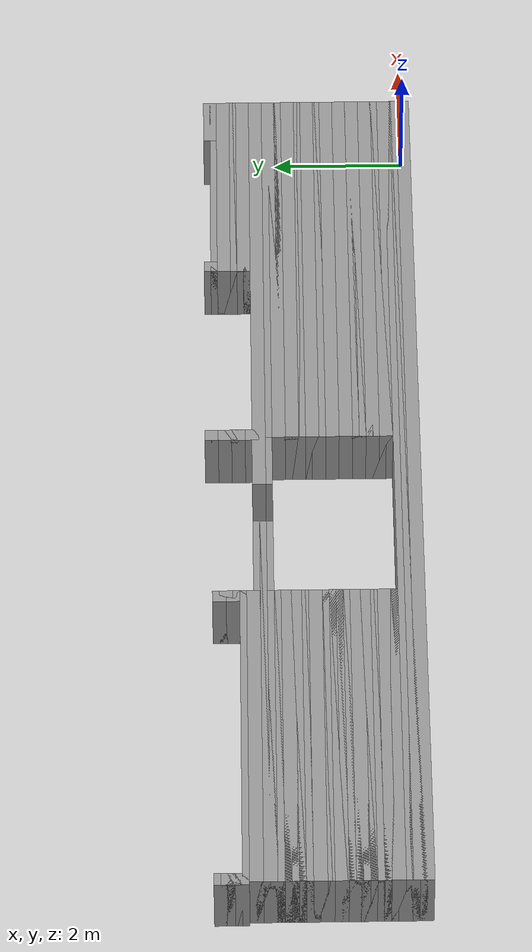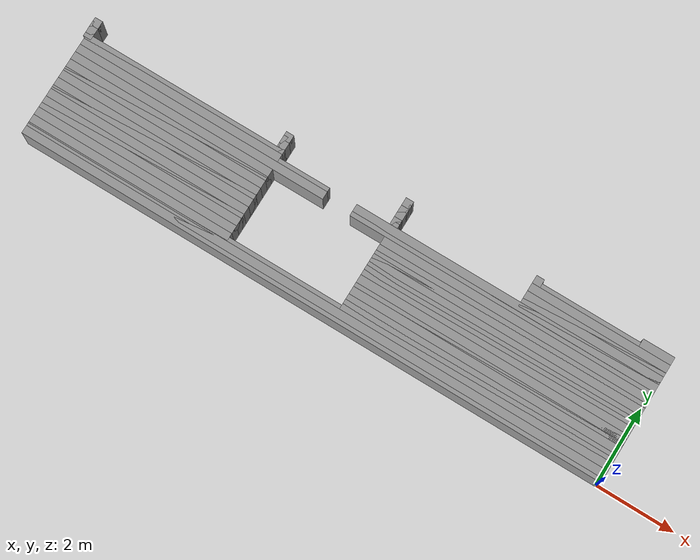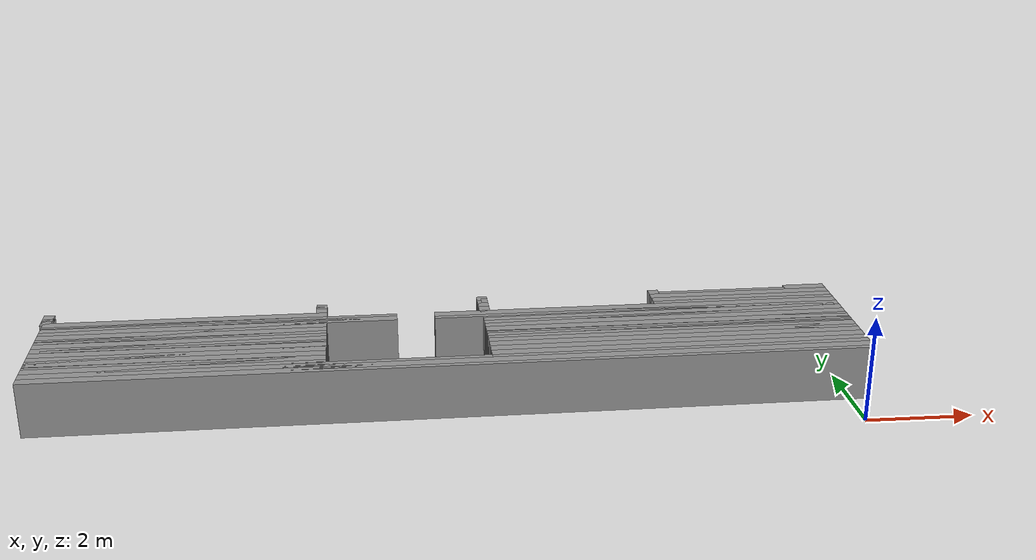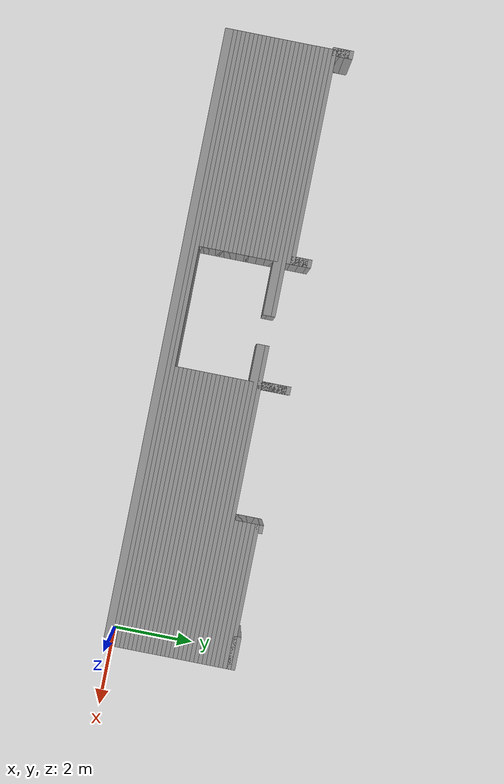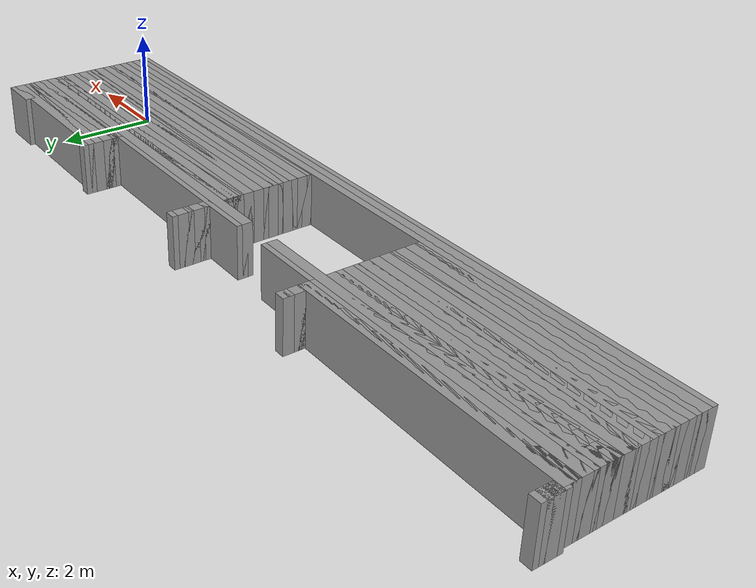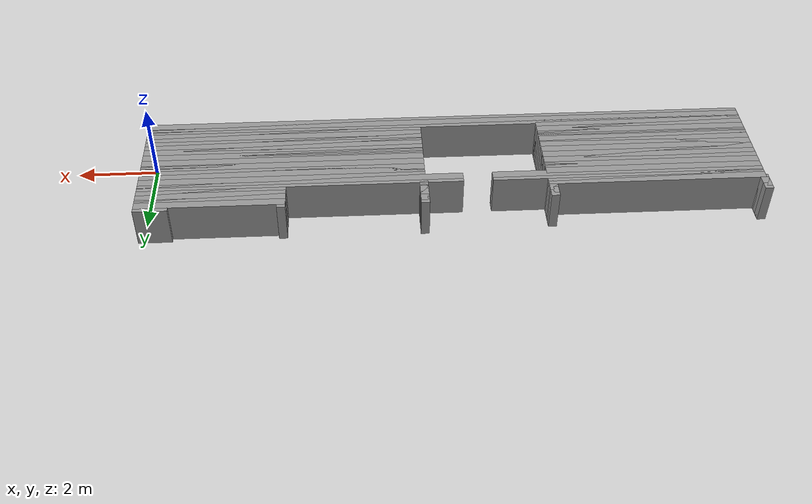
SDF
<sdf version="1.6">
 <world name="GridMap">
  <model name="GridMap">
   <link name="Wall_(74.5,0.0)">
    <collision name="Wall_(74.5,0.0)_Collision">
     <geometry><box><size>14.9 0.2 1.0</size></box></geometry>
     <pose>-7.45 0.0 0.5 0 -0 0</pose>
    </collision>
    <visual name="Wall_(74.5,0.0)_Visual">
     <geometry><box><size>14.9 0.2 1.0</size></box></geometry>
     <pose>-7.45 0.0 0.5 0 -0 0</pose>
     <material>
      <script><uri>file://media/materials/scripts/gazebo.material</uri><name>Gazebo/Grey</name></script>
      <ambient>1 1 1 1</ambient>
     </material>
     <meta><layer>0</layer></meta>
    </visual>
    <pose>0 0 0.5 0 -0 0</pose>
   </link>
   <link name="Wall_(74.5,1.0)">
    <collision name="Wall_(74.5,1.0)_Collision">
     <geometry><box><size>14.9 0.2 1.0</size></box></geometry>
     <pose>-7.45 0.1 0.5 0 -0 0</pose>
    </collision>
    <visual name="Wall_(74.5,1.0)_Visual">
     <geometry><box><size>14.9 0.2 1.0</size></box></geometry>
     <pose>-7.45 0.1 0.5 0 -0 0</pose>
     <material>
      <script><uri>file://media/materials/scripts/gazebo.material</uri><name>Gazebo/Grey</name></script>
      <ambient>1 1 1 1</ambient>
     </material>
     <meta><layer>0</layer></meta>
    </visual>
    <pose>0 0 0.5 0 -0 0</pose>
   </link>
   <link name="Wall_(74.5,2.0)">
    <collision name="Wall_(74.5,2.0)_Collision">
     <geometry><box><size>14.9 0.2 1.0</size></box></geometry>
     <pose>-7.45 0.2 0.5 0 -0 0</pose>
    </collision>
    <visual name="Wall_(74.5,2.0)_Visual">
     <geometry><box><size>14.9 0.2 1.0</size></box></geometry>
     <pose>-7.45 0.2 0.5 0 -0 0</pose>
     <material>
      <script><uri>file://media/materials/scripts/gazebo.material</uri><name>Gazebo/Grey</name></script>
      <ambient>1 1 1 1</ambient>
     </material>
     <meta><layer>0</layer></meta>
    </visual>
    <pose>0 0 0.5 0 -0 0</pose>
   </link>
   <link name="Wall_(34.0,3.0)">
    <collision name="Wall_(34.0,3.0)_Collision">
     <geometry><box><size>6.800000000000001 0.2 1.0</size></box></geometry>
     <pose>-3.4000000000000004 0.30000000000000004 0.5 0 -0 0</pose>
    </collision>
    <visual name="Wall_(34.0,3.0)_Visual">
     <geometry><box><size>6.800000000000001 0.2 1.0</size></box></geometry>
     <pose>-3.4000000000000004 0.30000000000000004 0.5 0 -0 0</pose>
     <material>
      <script><uri>file://media/materials/scripts/gazebo.material</uri><name>Gazebo/Grey</name></script>
      <ambient>1 1 1 1</ambient>
     </material>
     <meta><layer>0</layer></meta>
    </visual>
    <pose>0 0 0.5 0 -0 0</pose>
   </link>
   <link name="Wall_(123.0,3.0)">
    <collision name="Wall_(123.0,3.0)_Collision">
     <geometry><box><size>5.2 0.2 1.0</size></box></geometry>
     <pose>-12.3 0.30000000000000004 0.5 0 -0 0</pose>
    </collision>
    <visual name="Wall_(123.0,3.0)_Visual">
     <geometry><box><size>5.2 0.2 1.0</size></box></geometry>
     <pose>-12.3 0.30000000000000004 0.5 0 -0 0</pose>
     <material>
      <script><uri>file://media/materials/scripts/gazebo.material</uri><name>Gazebo/Grey</name></script>
      <ambient>1 1 1 1</ambient>
     </material>
     <meta><layer>0</layer></meta>
    </visual>
    <pose>0 0 0.5 0 -0 0</pose>
   </link>
   <link name="Wall_(34.0,4.0)">
    <collision name="Wall_(34.0,4.0)_Collision">
     <geometry><box><size>6.800000000000001 0.2 1.0</size></box></geometry>
     <pose>-3.4000000000000004 0.4 0.5 0 -0 0</pose>
    </collision>
    <visual name="Wall_(34.0,4.0)_Visual">
     <geometry><box><size>6.800000000000001 0.2 1.0</size></box></geometry>
     <pose>-3.4000000000000004 0.4 0.5 0 -0 0</pose>
     <material>
      <script><uri>file://media/materials/scripts/gazebo.material</uri><name>Gazebo/Grey</name></script>
      <ambient>1 1 1 1</ambient>
     </material>
     <meta><layer>0</layer></meta>
    </visual>
    <pose>0 0 0.5 0 -0 0</pose>
   </link>
   <link name="Wall_(123.0,4.0)">
    <collision name="Wall_(123.0,4.0)_Collision">
     <geometry><box><size>5.2 0.2 1.0</size></box></geometry>
     <pose>-12.3 0.4 0.5 0 -0 0</pose>
    </collision>
    <visual name="Wall_(123.0,4.0)_Visual">
     <geometry><box><size>5.2 0.2 1.0</size></box></geometry>
     <pose>-12.3 0.4 0.5 0 -0 0</pose>
     <material>
      <script><uri>file://media/materials/scripts/gazebo.material</uri><name>Gazebo/Grey</name></script>
      <ambient>1 1 1 1</ambient>
     </material>
     <meta><layer>0</layer></meta>
    </visual>
    <pose>0 0 0.5 0 -0 0</pose>
   </link>
   <link name="Wall_(34.0,5.0)">
    <collision name="Wall_(34.0,5.0)_Collision">
     <geometry><box><size>6.800000000000001 0.2 1.0</size></box></geometry>
     <pose>-3.4000000000000004 0.5 0.5 0 -0 0</pose>
    </collision>
    <visual name="Wall_(34.0,5.0)_Visual">
     <geometry><box><size>6.800000000000001 0.2 1.0</size></box></geometry>
     <pose>-3.4000000000000004 0.5 0.5 0 -0 0</pose>
     <material>
      <script><uri>file://media/materials/scripts/gazebo.material</uri><name>Gazebo/Grey</name></script>
      <ambient>1 1 1 1</ambient>
     </material>
     <meta><layer>0</layer></meta>
    </visual>
    <pose>0 0 0.5 0 -0 0</pose>
   </link>
   <link name="Wall_(123.0,5.0)">
    <collision name="Wall_(123.0,5.0)_Collision">
     <geometry><box><size>5.2 0.2 1.0</size></box></geometry>
     <pose>-12.3 0.5 0.5 0 -0 0</pose>
    </collision>
    <visual name="Wall_(123.0,5.0)_Visual">
     <geometry><box><size>5.2 0.2 1.0</size></box></geometry>
     <pose>-12.3 0.5 0.5 0 -0 0</pose>
     <material>
      <script><uri>file://media/materials/scripts/gazebo.material</uri><name>Gazebo/Grey</name></script>
      <ambient>1 1 1 1</ambient>
     </material>
     <meta><layer>0</layer></meta>
    </visual>
    <pose>0 0 0.5 0 -0 0</pose>
   </link>
   <link name="Wall_(34.0,6.0)">
    <collision name="Wall_(34.0,6.0)_Collision">
     <geometry><box><size>6.800000000000001 0.2 1.0</size></box></geometry>
     <pose>-3.4000000000000004 0.6000000000000001 0.5 0 -0 0</pose>
    </collision>
    <visual name="Wall_(34.0,6.0)_Visual">
     <geometry><box><size>6.800000000000001 0.2 1.0</size></box></geometry>
     <pose>-3.4000000000000004 0.6000000000000001 0.5 0 -0 0</pose>
     <material>
      <script><uri>file://media/materials/scripts/gazebo.material</uri><name>Gazebo/Grey</name></script>
      <ambient>1 1 1 1</ambient>
     </material>
     <meta><layer>0</layer></meta>
    </visual>
    <pose>0 0 0.5 0 -0 0</pose>
   </link>
   <link name="Wall_(123.0,6.0)">
    <collision name="Wall_(123.0,6.0)_Collision">
     <geometry><box><size>5.2 0.2 1.0</size></box></geometry>
     <pose>-12.3 0.6000000000000001 0.5 0 -0 0</pose>
    </collision>
    <visual name="Wall_(123.0,6.0)_Visual">
     <geometry><box><size>5.2 0.2 1.0</size></box></geometry>
     <pose>-12.3 0.6000000000000001 0.5 0 -0 0</pose>
     <material>
      <script><uri>file://media/materials/scripts/gazebo.material</uri><name>Gazebo/Grey</name></script>
      <ambient>1 1 1 1</ambient>
     </material>
     <meta><layer>0</layer></meta>
    </visual>
    <pose>0 0 0.5 0 -0 0</pose>
   </link>
   <link name="Wall_(34.0,7.0)">
    <collision name="Wall_(34.0,7.0)_Collision">
     <geometry><box><size>6.800000000000001 0.2 1.0</size></box></geometry>
     <pose>-3.4000000000000004 0.7000000000000001 0.5 0 -0 0</pose>
    </collision>
    <visual name="Wall_(34.0,7.0)_Visual">
     <geometry><box><size>6.800000000000001 0.2 1.0</size></box></geometry>
     <pose>-3.4000000000000004 0.7000000000000001 0.5 0 -0 0</pose>
     <material>
      <script><uri>file://media/materials/scripts/gazebo.material</uri><name>Gazebo/Grey</name></script>
      <ambient>1 1 1 1</ambient>
     </material>
     <meta><layer>0</layer></meta>
    </visual>
    <pose>0 0 0.5 0 -0 0</pose>
   </link>
   <link name="Wall_(123.0,7.0)">
    <collision name="Wall_(123.0,7.0)_Collision">
     <geometry><box><size>5.2 0.2 1.0</size></box></geometry>
     <pose>-12.3 0.7000000000000001 0.5 0 -0 0</pose>
    </collision>
    <visual name="Wall_(123.0,7.0)_Visual">
     <geometry><box><size>5.2 0.2 1.0</size></box></geometry>
     <pose>-12.3 0.7000000000000001 0.5 0 -0 0</pose>
     <material>
      <script><uri>file://media/materials/scripts/gazebo.material</uri><name>Gazebo/Grey</name></script>
      <ambient>1 1 1 1</ambient>
     </material>
     <meta><layer>0</layer></meta>
    </visual>
    <pose>0 0 0.5 0 -0 0</pose>
   </link>
   <link name="Wall_(34.0,8.0)">
    <collision name="Wall_(34.0,8.0)_Collision">
     <geometry><box><size>6.800000000000001 0.2 1.0</size></box></geometry>
     <pose>-3.4000000000000004 0.8 0.5 0 -0 0</pose>
    </collision>
    <visual name="Wall_(34.0,8.0)_Visual">
     <geometry><box><size>6.800000000000001 0.2 1.0</size></box></geometry>
     <pose>-3.4000000000000004 0.8 0.5 0 -0 0</pose>
     <material>
      <script><uri>file://media/materials/scripts/gazebo.material</uri><name>Gazebo/Grey</name></script>
      <ambient>1 1 1 1</ambient>
     </material>
     <meta><layer>0</layer></meta>
    </visual>
    <pose>0 0 0.5 0 -0 0</pose>
   </link>
   <link name="Wall_(123.0,8.0)">
    <collision name="Wall_(123.0,8.0)_Collision">
     <geometry><box><size>5.2 0.2 1.0</size></box></geometry>
     <pose>-12.3 0.8 0.5 0 -0 0</pose>
    </collision>
    <visual name="Wall_(123.0,8.0)_Visual">
     <geometry><box><size>5.2 0.2 1.0</size></box></geometry>
     <pose>-12.3 0.8 0.5 0 -0 0</pose>
     <material>
      <script><uri>file://media/materials/scripts/gazebo.material</uri><name>Gazebo/Grey</name></script>
      <ambient>1 1 1 1</ambient>
     </material>
     <meta><layer>0</layer></meta>
    </visual>
    <pose>0 0 0.5 0 -0 0</pose>
   </link>
   <link name="Wall_(34.0,9.0)">
    <collision name="Wall_(34.0,9.0)_Collision">
     <geometry><box><size>6.800000000000001 0.2 1.0</size></box></geometry>
     <pose>-3.4000000000000004 0.9 0.5 0 -0 0</pose>
    </collision>
    <visual name="Wall_(34.0,9.0)_Visual">
     <geometry><box><size>6.800000000000001 0.2 1.0</size></box></geometry>
     <pose>-3.4000000000000004 0.9 0.5 0 -0 0</pose>
     <material>
      <script><uri>file://media/materials/scripts/gazebo.material</uri><name>Gazebo/Grey</name></script>
      <ambient>1 1 1 1</ambient>
     </material>
     <meta><layer>0</layer></meta>
    </visual>
    <pose>0 0 0.5 0 -0 0</pose>
   </link>
   <link name="Wall_(123.0,9.0)">
    <collision name="Wall_(123.0,9.0)_Collision">
     <geometry><box><size>5.2 0.2 1.0</size></box></geometry>
     <pose>-12.3 0.9 0.5 0 -0 0</pose>
    </collision>
    <visual name="Wall_(123.0,9.0)_Visual">
     <geometry><box><size>5.2 0.2 1.0</size></box></geometry>
     <pose>-12.3 0.9 0.5 0 -0 0</pose>
     <material>
      <script><uri>file://media/materials/scripts/gazebo.material</uri><name>Gazebo/Grey</name></script>
      <ambient>1 1 1 1</ambient>
     </material>
     <meta><layer>0</layer></meta>
    </visual>
    <pose>0 0 0.5 0 -0 0</pose>
   </link>
   <link name="Wall_(34.0,10.0)">
    <collision name="Wall_(34.0,10.0)_Collision">
     <geometry><box><size>6.800000000000001 0.2 1.0</size></box></geometry>
     <pose>-3.4000000000000004 1.0 0.5 0 -0 0</pose>
    </collision>
    <visual name="Wall_(34.0,10.0)_Visual">
     <geometry><box><size>6.800000000000001 0.2 1.0</size></box></geometry>
     <pose>-3.4000000000000004 1.0 0.5 0 -0 0</pose>
     <material>
      <script><uri>file://media/materials/scripts/gazebo.material</uri><name>Gazebo/Grey</name></script>
      <ambient>1 1 1 1</ambient>
     </material>
     <meta><layer>0</layer></meta>
    </visual>
    <pose>0 0 0.5 0 -0 0</pose>
   </link>
   <link name="Wall_(123.0,10.0)">
    <collision name="Wall_(123.0,10.0)_Collision">
     <geometry><box><size>5.2 0.2 1.0</size></box></geometry>
     <pose>-12.3 1.0 0.5 0 -0 0</pose>
    </collision>
    <visual name="Wall_(123.0,10.0)_Visual">
     <geometry><box><size>5.2 0.2 1.0</size></box></geometry>
     <pose>-12.3 1.0 0.5 0 -0 0</pose>
     <material>
      <script><uri>file://media/materials/scripts/gazebo.material</uri><name>Gazebo/Grey</name></script>
      <ambient>1 1 1 1</ambient>
     </material>
     <meta><layer>0</layer></meta>
    </visual>
    <pose>0 0 0.5 0 -0 0</pose>
   </link>
   <link name="Wall_(34.0,11.0)">
    <collision name="Wall_(34.0,11.0)_Collision">
     <geometry><box><size>6.800000000000001 0.2 1.0</size></box></geometry>
     <pose>-3.4000000000000004 1.1 0.5 0 -0 0</pose>
    </collision>
    <visual name="Wall_(34.0,11.0)_Visual">
     <geometry><box><size>6.800000000000001 0.2 1.0</size></box></geometry>
     <pose>-3.4000000000000004 1.1 0.5 0 -0 0</pose>
     <material>
      <script><uri>file://media/materials/scripts/gazebo.material</uri><name>Gazebo/Grey</name></script>
      <ambient>1 1 1 1</ambient>
     </material>
     <meta><layer>0</layer></meta>
    </visual>
    <pose>0 0 0.5 0 -0 0</pose>
   </link>
   <link name="Wall_(123.0,11.0)">
    <collision name="Wall_(123.0,11.0)_Collision">
     <geometry><box><size>5.2 0.2 1.0</size></box></geometry>
     <pose>-12.3 1.1 0.5 0 -0 0</pose>
    </collision>
    <visual name="Wall_(123.0,11.0)_Visual">
     <geometry><box><size>5.2 0.2 1.0</size></box></geometry>
     <pose>-12.3 1.1 0.5 0 -0 0</pose>
     <material>
      <script><uri>file://media/materials/scripts/gazebo.material</uri><name>Gazebo/Grey</name></script>
      <ambient>1 1 1 1</ambient>
     </material>
     <meta><layer>0</layer></meta>
    </visual>
    <pose>0 0 0.5 0 -0 0</pose>
   </link>
   <link name="Wall_(34.0,12.0)">
    <collision name="Wall_(34.0,12.0)_Collision">
     <geometry><box><size>6.800000000000001 0.2 1.0</size></box></geometry>
     <pose>-3.4000000000000004 1.2000000000000002 0.5 0 -0 0</pose>
    </collision>
    <visual name="Wall_(34.0,12.0)_Visual">
     <geometry><box><size>6.800000000000001 0.2 1.0</size></box></geometry>
     <pose>-3.4000000000000004 1.2000000000000002 0.5 0 -0 0</pose>
     <material>
      <script><uri>file://media/materials/scripts/gazebo.material</uri><name>Gazebo/Grey</name></script>
      <ambient>1 1 1 1</ambient>
     </material>
     <meta><layer>0</layer></meta>
    </visual>
    <pose>0 0 0.5 0 -0 0</pose>
   </link>
   <link name="Wall_(123.0,12.0)">
    <collision name="Wall_(123.0,12.0)_Collision">
     <geometry><box><size>5.2 0.2 1.0</size></box></geometry>
     <pose>-12.3 1.2000000000000002 0.5 0 -0 0</pose>
    </collision>
    <visual name="Wall_(123.0,12.0)_Visual">
     <geometry><box><size>5.2 0.2 1.0</size></box></geometry>
     <pose>-12.3 1.2000000000000002 0.5 0 -0 0</pose>
     <material>
      <script><uri>file://media/materials/scripts/gazebo.material</uri><name>Gazebo/Grey</name></script>
      <ambient>1 1 1 1</ambient>
     </material>
     <meta><layer>0</layer></meta>
    </visual>
    <pose>0 0 0.5 0 -0 0</pose>
   </link>
   <link name="Wall_(34.0,13.0)">
    <collision name="Wall_(34.0,13.0)_Collision">
     <geometry><box><size>6.800000000000001 0.2 1.0</size></box></geometry>
     <pose>-3.4000000000000004 1.3 0.5 0 -0 0</pose>
    </collision>
    <visual name="Wall_(34.0,13.0)_Visual">
     <geometry><box><size>6.800000000000001 0.2 1.0</size></box></geometry>
     <pose>-3.4000000000000004 1.3 0.5 0 -0 0</pose>
     <material>
      <script><uri>file://media/materials/scripts/gazebo.material</uri><name>Gazebo/Grey</name></script>
      <ambient>1 1 1 1</ambient>
     </material>
     <meta><layer>0</layer></meta>
    </visual>
    <pose>0 0 0.5 0 -0 0</pose>
   </link>
   <link name="Wall_(123.0,13.0)">
    <collision name="Wall_(123.0,13.0)_Collision">
     <geometry><box><size>5.2 0.2 1.0</size></box></geometry>
     <pose>-12.3 1.3 0.5 0 -0 0</pose>
    </collision>
    <visual name="Wall_(123.0,13.0)_Visual">
     <geometry><box><size>5.2 0.2 1.0</size></box></geometry>
     <pose>-12.3 1.3 0.5 0 -0 0</pose>
     <material>
      <script><uri>file://media/materials/scripts/gazebo.material</uri><name>Gazebo/Grey</name></script>
      <ambient>1 1 1 1</ambient>
     </material>
     <meta><layer>0</layer></meta>
    </visual>
    <pose>0 0 0.5 0 -0 0</pose>
   </link>
   <link name="Wall_(34.0,14.0)">
    <collision name="Wall_(34.0,14.0)_Collision">
     <geometry><box><size>6.800000000000001 0.2 1.0</size></box></geometry>
     <pose>-3.4000000000000004 1.4000000000000001 0.5 0 -0 0</pose>
    </collision>
    <visual name="Wall_(34.0,14.0)_Visual">
     <geometry><box><size>6.800000000000001 0.2 1.0</size></box></geometry>
     <pose>-3.4000000000000004 1.4000000000000001 0.5 0 -0 0</pose>
     <material>
      <script><uri>file://media/materials/scripts/gazebo.material</uri><name>Gazebo/Grey</name></script>
      <ambient>1 1 1 1</ambient>
     </material>
     <meta><layer>0</layer></meta>
    </visual>
    <pose>0 0 0.5 0 -0 0</pose>
   </link>
   <link name="Wall_(123.0,14.0)">
    <collision name="Wall_(123.0,14.0)_Collision">
     <geometry><box><size>5.2 0.2 1.0</size></box></geometry>
     <pose>-12.3 1.4000000000000001 0.5 0 -0 0</pose>
    </collision>
    <visual name="Wall_(123.0,14.0)_Visual">
     <geometry><box><size>5.2 0.2 1.0</size></box></geometry>
     <pose>-12.3 1.4000000000000001 0.5 0 -0 0</pose>
     <material>
      <script><uri>file://media/materials/scripts/gazebo.material</uri><name>Gazebo/Grey</name></script>
      <ambient>1 1 1 1</ambient>
     </material>
     <meta><layer>0</layer></meta>
    </visual>
    <pose>0 0 0.5 0 -0 0</pose>
   </link>
   <link name="Wall_(34.0,15.0)">
    <collision name="Wall_(34.0,15.0)_Collision">
     <geometry><box><size>6.800000000000001 0.2 1.0</size></box></geometry>
     <pose>-3.4000000000000004 1.5 0.5 0 -0 0</pose>
    </collision>
    <visual name="Wall_(34.0,15.0)_Visual">
     <geometry><box><size>6.800000000000001 0.2 1.0</size></box></geometry>
     <pose>-3.4000000000000004 1.5 0.5 0 -0 0</pose>
     <material>
      <script><uri>file://media/materials/scripts/gazebo.material</uri><name>Gazebo/Grey</name></script>
      <ambient>1 1 1 1</ambient>
     </material>
     <meta><layer>0</layer></meta>
    </visual>
    <pose>0 0 0.5 0 -0 0</pose>
   </link>
   <link name="Wall_(123.0,15.0)">
    <collision name="Wall_(123.0,15.0)_Collision">
     <geometry><box><size>5.2 0.2 1.0</size></box></geometry>
     <pose>-12.3 1.5 0.5 0 -0 0</pose>
    </collision>
    <visual name="Wall_(123.0,15.0)_Visual">
     <geometry><box><size>5.2 0.2 1.0</size></box></geometry>
     <pose>-12.3 1.5 0.5 0 -0 0</pose>
     <material>
      <script><uri>file://media/materials/scripts/gazebo.material</uri><name>Gazebo/Grey</name></script>
      <ambient>1 1 1 1</ambient>
     </material>
     <meta><layer>0</layer></meta>
    </visual>
    <pose>0 0 0.5 0 -0 0</pose>
   </link>
   <link name="Wall_(34.0,16.0)">
    <collision name="Wall_(34.0,16.0)_Collision">
     <geometry><box><size>6.800000000000001 0.2 1.0</size></box></geometry>
     <pose>-3.4000000000000004 1.6 0.5 0 -0 0</pose>
    </collision>
    <visual name="Wall_(34.0,16.0)_Visual">
     <geometry><box><size>6.800000000000001 0.2 1.0</size></box></geometry>
     <pose>-3.4000000000000004 1.6 0.5 0 -0 0</pose>
     <material>
      <script><uri>file://media/materials/scripts/gazebo.material</uri><name>Gazebo/Grey</name></script>
      <ambient>1 1 1 1</ambient>
     </material>
     <meta><layer>0</layer></meta>
    </visual>
    <pose>0 0 0.5 0 -0 0</pose>
   </link>
   <link name="Wall_(123.0,16.0)">
    <collision name="Wall_(123.0,16.0)_Collision">
     <geometry><box><size>5.2 0.2 1.0</size></box></geometry>
     <pose>-12.3 1.6 0.5 0 -0 0</pose>
    </collision>
    <visual name="Wall_(123.0,16.0)_Visual">
     <geometry><box><size>5.2 0.2 1.0</size></box></geometry>
     <pose>-12.3 1.6 0.5 0 -0 0</pose>
     <material>
      <script><uri>file://media/materials/scripts/gazebo.material</uri><name>Gazebo/Grey</name></script>
      <ambient>1 1 1 1</ambient>
     </material>
     <meta><layer>0</layer></meta>
    </visual>
    <pose>0 0 0.5 0 -0 0</pose>
   </link>
   <link name="Wall_(34.0,17.0)">
    <collision name="Wall_(34.0,17.0)_Collision">
     <geometry><box><size>6.800000000000001 0.2 1.0</size></box></geometry>
     <pose>-3.4000000000000004 1.7000000000000002 0.5 0 -0 0</pose>
    </collision>
    <visual name="Wall_(34.0,17.0)_Visual">
     <geometry><box><size>6.800000000000001 0.2 1.0</size></box></geometry>
     <pose>-3.4000000000000004 1.7000000000000002 0.5 0 -0 0</pose>
     <material>
      <script><uri>file://media/materials/scripts/gazebo.material</uri><name>Gazebo/Grey</name></script>
      <ambient>1 1 1 1</ambient>
     </material>
     <meta><layer>0</layer></meta>
    </visual>
    <pose>0 0 0.5 0 -0 0</pose>
   </link>
   <link name="Wall_(123.0,17.0)">
    <collision name="Wall_(123.0,17.0)_Collision">
     <geometry><box><size>5.2 0.2 1.0</size></box></geometry>
     <pose>-12.3 1.7000000000000002 0.5 0 -0 0</pose>
    </collision>
    <visual name="Wall_(123.0,17.0)_Visual">
     <geometry><box><size>5.2 0.2 1.0</size></box></geometry>
     <pose>-12.3 1.7000000000000002 0.5 0 -0 0</pose>
     <material>
      <script><uri>file://media/materials/scripts/gazebo.material</uri><name>Gazebo/Grey</name></script>
      <ambient>1 1 1 1</ambient>
     </material>
     <meta><layer>0</layer></meta>
    </visual>
    <pose>0 0 0.5 0 -0 0</pose>
   </link>
   <link name="Wall_(34.0,18.0)">
    <collision name="Wall_(34.0,18.0)_Collision">
     <geometry><box><size>6.800000000000001 0.2 1.0</size></box></geometry>
     <pose>-3.4000000000000004 1.8 0.5 0 -0 0</pose>
    </collision>
    <visual name="Wall_(34.0,18.0)_Visual">
     <geometry><box><size>6.800000000000001 0.2 1.0</size></box></geometry>
     <pose>-3.4000000000000004 1.8 0.5 0 -0 0</pose>
     <material>
      <script><uri>file://media/materials/scripts/gazebo.material</uri><name>Gazebo/Grey</name></script>
      <ambient>1 1 1 1</ambient>
     </material>
     <meta><layer>0</layer></meta>
    </visual>
    <pose>0 0 0.5 0 -0 0</pose>
   </link>
   <link name="Wall_(123.0,18.0)">
    <collision name="Wall_(123.0,18.0)_Collision">
     <geometry><box><size>5.2 0.2 1.0</size></box></geometry>
     <pose>-12.3 1.8 0.5 0 -0 0</pose>
    </collision>
    <visual name="Wall_(123.0,18.0)_Visual">
     <geometry><box><size>5.2 0.2 1.0</size></box></geometry>
     <pose>-12.3 1.8 0.5 0 -0 0</pose>
     <material>
      <script><uri>file://media/materials/scripts/gazebo.material</uri><name>Gazebo/Grey</name></script>
      <ambient>1 1 1 1</ambient>
     </material>
     <meta><layer>0</layer></meta>
    </visual>
    <pose>0 0 0.5 0 -0 0</pose>
   </link>
   <link name="Wall_(34.0,19.0)">
    <collision name="Wall_(34.0,19.0)_Collision">
     <geometry><box><size>6.800000000000001 0.2 1.0</size></box></geometry>
     <pose>-3.4000000000000004 1.9000000000000001 0.5 0 -0 0</pose>
    </collision>
    <visual name="Wall_(34.0,19.0)_Visual">
     <geometry><box><size>6.800000000000001 0.2 1.0</size></box></geometry>
     <pose>-3.4000000000000004 1.9000000000000001 0.5 0 -0 0</pose>
     <material>
      <script><uri>file://media/materials/scripts/gazebo.material</uri><name>Gazebo/Grey</name></script>
      <ambient>1 1 1 1</ambient>
     </material>
     <meta><layer>0</layer></meta>
    </visual>
    <pose>0 0 0.5 0 -0 0</pose>
   </link>
   <link name="Wall_(123.0,19.0)">
    <collision name="Wall_(123.0,19.0)_Collision">
     <geometry><box><size>5.2 0.2 1.0</size></box></geometry>
     <pose>-12.3 1.9000000000000001 0.5 0 -0 0</pose>
    </collision>
    <visual name="Wall_(123.0,19.0)_Visual">
     <geometry><box><size>5.2 0.2 1.0</size></box></geometry>
     <pose>-12.3 1.9000000000000001 0.5 0 -0 0</pose>
     <material>
      <script><uri>file://media/materials/scripts/gazebo.material</uri><name>Gazebo/Grey</name></script>
      <ambient>1 1 1 1</ambient>
     </material>
     <meta><layer>0</layer></meta>
    </visual>
    <pose>0 0 0.5 0 -0 0</pose>
   </link>
   <link name="Wall_(34.0,20.0)">
    <collision name="Wall_(34.0,20.0)_Collision">
     <geometry><box><size>6.800000000000001 0.2 1.0</size></box></geometry>
     <pose>-3.4000000000000004 2.0 0.5 0 -0 0</pose>
    </collision>
    <visual name="Wall_(34.0,20.0)_Visual">
     <geometry><box><size>6.800000000000001 0.2 1.0</size></box></geometry>
     <pose>-3.4000000000000004 2.0 0.5 0 -0 0</pose>
     <material>
      <script><uri>file://media/materials/scripts/gazebo.material</uri><name>Gazebo/Grey</name></script>
      <ambient>1 1 1 1</ambient>
     </material>
     <meta><layer>0</layer></meta>
    </visual>
    <pose>0 0 0.5 0 -0 0</pose>
   </link>
   <link name="Wall_(123.0,20.0)">
    <collision name="Wall_(123.0,20.0)_Collision">
     <geometry><box><size>5.2 0.2 1.0</size></box></geometry>
     <pose>-12.3 2.0 0.5 0 -0 0</pose>
    </collision>
    <visual name="Wall_(123.0,20.0)_Visual">
     <geometry><box><size>5.2 0.2 1.0</size></box></geometry>
     <pose>-12.3 2.0 0.5 0 -0 0</pose>
     <material>
      <script><uri>file://media/materials/scripts/gazebo.material</uri><name>Gazebo/Grey</name></script>
      <ambient>1 1 1 1</ambient>
     </material>
     <meta><layer>0</layer></meta>
    </visual>
    <pose>0 0 0.5 0 -0 0</pose>
   </link>
   <link name="Wall_(34.0,21.0)">
    <collision name="Wall_(34.0,21.0)_Collision">
     <geometry><box><size>6.800000000000001 0.2 1.0</size></box></geometry>
     <pose>-3.4000000000000004 2.1 0.5 0 -0 0</pose>
    </collision>
    <visual name="Wall_(34.0,21.0)_Visual">
     <geometry><box><size>6.800000000000001 0.2 1.0</size></box></geometry>
     <pose>-3.4000000000000004 2.1 0.5 0 -0 0</pose>
     <material>
      <script><uri>file://media/materials/scripts/gazebo.material</uri><name>Gazebo/Grey</name></script>
      <ambient>1 1 1 1</ambient>
     </material>
     <meta><layer>0</layer></meta>
    </visual>
    <pose>0 0 0.5 0 -0 0</pose>
   </link>
   <link name="Wall_(123.0,21.0)">
    <collision name="Wall_(123.0,21.0)_Collision">
     <geometry><box><size>5.2 0.2 1.0</size></box></geometry>
     <pose>-12.3 2.1 0.5 0 -0 0</pose>
    </collision>
    <visual name="Wall_(123.0,21.0)_Visual">
     <geometry><box><size>5.2 0.2 1.0</size></box></geometry>
     <pose>-12.3 2.1 0.5 0 -0 0</pose>
     <material>
      <script><uri>file://media/materials/scripts/gazebo.material</uri><name>Gazebo/Grey</name></script>
      <ambient>1 1 1 1</ambient>
     </material>
     <meta><layer>0</layer></meta>
    </visual>
    <pose>0 0 0.5 0 -0 0</pose>
   </link>
   <link name="Wall_(38.5,22.0)">
    <collision name="Wall_(38.5,22.0)_Collision">
     <geometry><box><size>7.7 0.2 1.0</size></box></geometry>
     <pose>-3.85 2.2 0.5 0 -0 0</pose>
    </collision>
    <visual name="Wall_(38.5,22.0)_Visual">
     <geometry><box><size>7.7 0.2 1.0</size></box></geometry>
     <pose>-3.85 2.2 0.5 0 -0 0</pose>
     <material>
      <script><uri>file://media/materials/scripts/gazebo.material</uri><name>Gazebo/Grey</name></script>
      <ambient>1 1 1 1</ambient>
     </material>
     <meta><layer>0</layer></meta>
    </visual>
    <pose>0 0 0.5 0 -0 0</pose>
   </link>
   <link name="Wall_(116.5,22.0)">
    <collision name="Wall_(116.5,22.0)_Collision">
     <geometry><box><size>6.5 0.2 1.0</size></box></geometry>
     <pose>-11.65 2.2 0.5 0 -0 0</pose>
    </collision>
    <visual name="Wall_(116.5,22.0)_Visual">
     <geometry><box><size>6.5 0.2 1.0</size></box></geometry>
     <pose>-11.65 2.2 0.5 0 -0 0</pose>
     <material>
      <script><uri>file://media/materials/scripts/gazebo.material</uri><name>Gazebo/Grey</name></script>
      <ambient>1 1 1 1</ambient>
     </material>
     <meta><layer>0</layer></meta>
    </visual>
    <pose>0 0 0.5 0 -0 0</pose>
   </link>
   <link name="Wall_(38.5,23.0)">
    <collision name="Wall_(38.5,23.0)_Collision">
     <geometry><box><size>7.7 0.2 1.0</size></box></geometry>
     <pose>-3.85 2.3000000000000003 0.5 0 -0 0</pose>
    </collision>
    <visual name="Wall_(38.5,23.0)_Visual">
     <geometry><box><size>7.7 0.2 1.0</size></box></geometry>
     <pose>-3.85 2.3000000000000003 0.5 0 -0 0</pose>
     <material>
      <script><uri>file://media/materials/scripts/gazebo.material</uri><name>Gazebo/Grey</name></script>
      <ambient>1 1 1 1</ambient>
     </material>
     <meta><layer>0</layer></meta>
    </visual>
    <pose>0 0 0.5 0 -0 0</pose>
   </link>
   <link name="Wall_(116.5,23.0)">
    <collision name="Wall_(116.5,23.0)_Collision">
     <geometry><box><size>6.5 0.2 1.0</size></box></geometry>
     <pose>-11.65 2.3000000000000003 0.5 0 -0 0</pose>
    </collision>
    <visual name="Wall_(116.5,23.0)_Visual">
     <geometry><box><size>6.5 0.2 1.0</size></box></geometry>
     <pose>-11.65 2.3000000000000003 0.5 0 -0 0</pose>
     <material>
      <script><uri>file://media/materials/scripts/gazebo.material</uri><name>Gazebo/Grey</name></script>
      <ambient>1 1 1 1</ambient>
     </material>
     <meta><layer>0</layer></meta>
    </visual>
    <pose>0 0 0.5 0 -0 0</pose>
   </link>
   <link name="Wall_(17.5,24.0)">
    <collision name="Wall_(17.5,24.0)_Collision">
     <geometry><box><size>3.5 0.2 1.0</size></box></geometry>
     <pose>-1.75 2.4000000000000004 0.5 0 -0 0</pose>
    </collision>
    <visual name="Wall_(17.5,24.0)_Visual">
     <geometry><box><size>3.5 0.2 1.0</size></box></geometry>
     <pose>-1.75 2.4000000000000004 0.5 0 -0 0</pose>
     <material>
      <script><uri>file://media/materials/scripts/gazebo.material</uri><name>Gazebo/Grey</name></script>
      <ambient>1 1 1 1</ambient>
     </material>
     <meta><layer>0</layer></meta>
    </visual>
    <pose>0 0 0.5 0 -0 0</pose>
   </link>
   <link name="Wall_(67.5,24.0)">
    <collision name="Wall_(67.5,24.0)_Collision">
     <geometry><box><size>0.2 0.2 1.0</size></box></geometry>
     <pose>-6.75 2.4000000000000004 0.5 0 -0 0</pose>
    </collision>
    <visual name="Wall_(67.5,24.0)_Visual">
     <geometry><box><size>0.2 0.2 1.0</size></box></geometry>
     <pose>-6.75 2.4000000000000004 0.5 0 -0 0</pose>
     <material>
      <script><uri>file://media/materials/scripts/gazebo.material</uri><name>Gazebo/Grey</name></script>
      <ambient>1 1 1 1</ambient>
     </material>
     <meta><layer>0</layer></meta>
    </visual>
    <pose>0 0 0.5 0 -0 0</pose>
   </link>
   <link name="Wall_(123.0,24.0)">
    <collision name="Wall_(123.0,24.0)_Collision">
     <geometry><box><size>5.2 0.2 1.0</size></box></geometry>
     <pose>-12.3 2.4000000000000004 0.5 0 -0 0</pose>
    </collision>
    <visual name="Wall_(123.0,24.0)_Visual">
     <geometry><box><size>5.2 0.2 1.0</size></box></geometry>
     <pose>-12.3 2.4000000000000004 0.5 0 -0 0</pose>
     <material>
      <script><uri>file://media/materials/scripts/gazebo.material</uri><name>Gazebo/Grey</name></script>
      <ambient>1 1 1 1</ambient>
     </material>
     <meta><layer>0</layer></meta>
    </visual>
    <pose>0 0 0.5 0 -0 0</pose>
   </link>
   <link name="Wall_(17.5,25.0)">
    <collision name="Wall_(17.5,25.0)_Collision">
     <geometry><box><size>3.5 0.2 1.0</size></box></geometry>
     <pose>-1.75 2.5 0.5 0 -0 0</pose>
    </collision>
    <visual name="Wall_(17.5,25.0)_Visual">
     <geometry><box><size>3.5 0.2 1.0</size></box></geometry>
     <pose>-1.75 2.5 0.5 0 -0 0</pose>
     <material>
      <script><uri>file://media/materials/scripts/gazebo.material</uri><name>Gazebo/Grey</name></script>
      <ambient>1 1 1 1</ambient>
     </material>
     <meta><layer>0</layer></meta>
    </visual>
    <pose>0 0 0.5 0 -0 0</pose>
   </link>
   <link name="Wall_(67.5,25.0)">
    <collision name="Wall_(67.5,25.0)_Collision">
     <geometry><box><size>0.2 0.2 1.0</size></box></geometry>
     <pose>-6.75 2.5 0.5 0 -0 0</pose>
    </collision>
    <visual name="Wall_(67.5,25.0)_Visual">
     <geometry><box><size>0.2 0.2 1.0</size></box></geometry>
     <pose>-6.75 2.5 0.5 0 -0 0</pose>
     <material>
      <script><uri>file://media/materials/scripts/gazebo.material</uri><name>Gazebo/Grey</name></script>
      <ambient>1 1 1 1</ambient>
     </material>
     <meta><layer>0</layer></meta>
    </visual>
    <pose>0 0 0.5 0 -0 0</pose>
   </link>
   <link name="Wall_(123.0,25.0)">
    <collision name="Wall_(123.0,25.0)_Collision">
     <geometry><box><size>5.2 0.2 1.0</size></box></geometry>
     <pose>-12.3 2.5 0.5 0 -0 0</pose>
    </collision>
    <visual name="Wall_(123.0,25.0)_Visual">
     <geometry><box><size>5.2 0.2 1.0</size></box></geometry>
     <pose>-12.3 2.5 0.5 0 -0 0</pose>
     <material>
      <script><uri>file://media/materials/scripts/gazebo.material</uri><name>Gazebo/Grey</name></script>
      <ambient>1 1 1 1</ambient>
     </material>
     <meta><layer>0</layer></meta>
    </visual>
    <pose>0 0 0.5 0 -0 0</pose>
   </link>
   <link name="Wall_(17.5,26.0)">
    <collision name="Wall_(17.5,26.0)_Collision">
     <geometry><box><size>3.5 0.2 1.0</size></box></geometry>
     <pose>-1.75 2.6 0.5 0 -0 0</pose>
    </collision>
    <visual name="Wall_(17.5,26.0)_Visual">
     <geometry><box><size>3.5 0.2 1.0</size></box></geometry>
     <pose>-1.75 2.6 0.5 0 -0 0</pose>
     <material>
      <script><uri>file://media/materials/scripts/gazebo.material</uri><name>Gazebo/Grey</name></script>
      <ambient>1 1 1 1</ambient>
     </material>
     <meta><layer>0</layer></meta>
    </visual>
    <pose>0 0 0.5 0 -0 0</pose>
   </link>
   <link name="Wall_(67.5,26.0)">
    <collision name="Wall_(67.5,26.0)_Collision">
     <geometry><box><size>0.2 0.2 1.0</size></box></geometry>
     <pose>-6.75 2.6 0.5 0 -0 0</pose>
    </collision>
    <visual name="Wall_(67.5,26.0)_Visual">
     <geometry><box><size>0.2 0.2 1.0</size></box></geometry>
     <pose>-6.75 2.6 0.5 0 -0 0</pose>
     <material>
      <script><uri>file://media/materials/scripts/gazebo.material</uri><name>Gazebo/Grey</name></script>
      <ambient>1 1 1 1</ambient>
     </material>
     <meta><layer>0</layer></meta>
    </visual>
    <pose>0 0 0.5 0 -0 0</pose>
   </link>
   <link name="Wall_(98.0,26.0)">
    <collision name="Wall_(98.0,26.0)_Collision">
     <geometry><box><size>0.2 0.2 1.0</size></box></geometry>
     <pose>-9.8 2.6 0.5 0 -0 0</pose>
    </collision>
    <visual name="Wall_(98.0,26.0)_Visual">
     <geometry><box><size>0.2 0.2 1.0</size></box></geometry>
     <pose>-9.8 2.6 0.5 0 -0 0</pose>
     <material>
      <script><uri>file://media/materials/scripts/gazebo.material</uri><name>Gazebo/Grey</name></script>
      <ambient>1 1 1 1</ambient>
     </material>
     <meta><layer>0</layer></meta>
    </visual>
    <pose>0 0 0.5 0 -0 0</pose>
   </link>
   <link name="Wall_(148.5,26.0)">
    <collision name="Wall_(148.5,26.0)_Collision">
     <geometry><box><size>0.2 0.2 1.0</size></box></geometry>
     <pose>-14.850000000000001 2.6 0.5 0 -0 0</pose>
    </collision>
    <visual name="Wall_(148.5,26.0)_Visual">
     <geometry><box><size>0.2 0.2 1.0</size></box></geometry>
     <pose>-14.850000000000001 2.6 0.5 0 -0 0</pose>
     <material>
      <script><uri>file://media/materials/scripts/gazebo.material</uri><name>Gazebo/Grey</name></script>
      <ambient>1 1 1 1</ambient>
     </material>
     <meta><layer>0</layer></meta>
    </visual>
    <pose>0 0 0.5 0 -0 0</pose>
   </link>
   <link name="Wall_(17.5,27.0)">
    <collision name="Wall_(17.5,27.0)_Collision">
     <geometry><box><size>3.5 0.2 1.0</size></box></geometry>
     <pose>-1.75 2.7 0.5 0 -0 0</pose>
    </collision>
    <visual name="Wall_(17.5,27.0)_Visual">
     <geometry><box><size>3.5 0.2 1.0</size></box></geometry>
     <pose>-1.75 2.7 0.5 0 -0 0</pose>
     <material>
      <script><uri>file://media/materials/scripts/gazebo.material</uri><name>Gazebo/Grey</name></script>
      <ambient>1 1 1 1</ambient>
     </material>
     <meta><layer>0</layer></meta>
    </visual>
    <pose>0 0 0.5 0 -0 0</pose>
   </link>
   <link name="Wall_(67.5,27.0)">
    <collision name="Wall_(67.5,27.0)_Collision">
     <geometry><box><size>0.2 0.2 1.0</size></box></geometry>
     <pose>-6.75 2.7 0.5 0 -0 0</pose>
    </collision>
    <visual name="Wall_(67.5,27.0)_Visual">
     <geometry><box><size>0.2 0.2 1.0</size></box></geometry>
     <pose>-6.75 2.7 0.5 0 -0 0</pose>
     <material>
      <script><uri>file://media/materials/scripts/gazebo.material</uri><name>Gazebo/Grey</name></script>
      <ambient>1 1 1 1</ambient>
     </material>
     <meta><layer>0</layer></meta>
    </visual>
    <pose>0 0 0.5 0 -0 0</pose>
   </link>
   <link name="Wall_(98.0,27.0)">
    <collision name="Wall_(98.0,27.0)_Collision">
     <geometry><box><size>0.2 0.2 1.0</size></box></geometry>
     <pose>-9.8 2.7 0.5 0 -0 0</pose>
    </collision>
    <visual name="Wall_(98.0,27.0)_Visual">
     <geometry><box><size>0.2 0.2 1.0</size></box></geometry>
     <pose>-9.8 2.7 0.5 0 -0 0</pose>
     <material>
      <script><uri>file://media/materials/scripts/gazebo.material</uri><name>Gazebo/Grey</name></script>
      <ambient>1 1 1 1</ambient>
     </material>
     <meta><layer>0</layer></meta>
    </visual>
    <pose>0 0 0.5 0 -0 0</pose>
   </link>
   <link name="Wall_(148.5,27.0)">
    <collision name="Wall_(148.5,27.0)_Collision">
     <geometry><box><size>0.2 0.2 1.0</size></box></geometry>
     <pose>-14.850000000000001 2.7 0.5 0 -0 0</pose>
    </collision>
    <visual name="Wall_(148.5,27.0)_Visual">
     <geometry><box><size>0.2 0.2 1.0</size></box></geometry>
     <pose>-14.850000000000001 2.7 0.5 0 -0 0</pose>
     <material>
      <script><uri>file://media/materials/scripts/gazebo.material</uri><name>Gazebo/Grey</name></script>
      <ambient>1 1 1 1</ambient>
     </material>
     <meta><layer>0</layer></meta>
    </visual>
    <pose>0 0 0.5 0 -0 0</pose>
   </link>
   <link name="Wall_(17.5,28.0)">
    <collision name="Wall_(17.5,28.0)_Collision">
     <geometry><box><size>3.5 0.2 1.0</size></box></geometry>
     <pose>-1.75 2.8000000000000003 0.5 0 -0 0</pose>
    </collision>
    <visual name="Wall_(17.5,28.0)_Visual">
     <geometry><box><size>3.5 0.2 1.0</size></box></geometry>
     <pose>-1.75 2.8000000000000003 0.5 0 -0 0</pose>
     <material>
      <script><uri>file://media/materials/scripts/gazebo.material</uri><name>Gazebo/Grey</name></script>
      <ambient>1 1 1 1</ambient>
     </material>
     <meta><layer>0</layer></meta>
    </visual>
    <pose>0 0 0.5 0 -0 0</pose>
   </link>
   <link name="Wall_(67.5,28.0)">
    <collision name="Wall_(67.5,28.0)_Collision">
     <geometry><box><size>0.2 0.2 1.0</size></box></geometry>
     <pose>-6.75 2.8000000000000003 0.5 0 -0 0</pose>
    </collision>
    <visual name="Wall_(67.5,28.0)_Visual">
     <geometry><box><size>0.2 0.2 1.0</size></box></geometry>
     <pose>-6.75 2.8000000000000003 0.5 0 -0 0</pose>
     <material>
      <script><uri>file://media/materials/scripts/gazebo.material</uri><name>Gazebo/Grey</name></script>
      <ambient>1 1 1 1</ambient>
     </material>
     <meta><layer>0</layer></meta>
    </visual>
    <pose>0 0 0.5 0 -0 0</pose>
   </link>
   <link name="Wall_(98.0,28.0)">
    <collision name="Wall_(98.0,28.0)_Collision">
     <geometry><box><size>0.2 0.2 1.0</size></box></geometry>
     <pose>-9.8 2.8000000000000003 0.5 0 -0 0</pose>
    </collision>
    <visual name="Wall_(98.0,28.0)_Visual">
     <geometry><box><size>0.2 0.2 1.0</size></box></geometry>
     <pose>-9.8 2.8000000000000003 0.5 0 -0 0</pose>
     <material>
      <script><uri>file://media/materials/scripts/gazebo.material</uri><name>Gazebo/Grey</name></script>
      <ambient>1 1 1 1</ambient>
     </material>
     <meta><layer>0</layer></meta>
    </visual>
    <pose>0 0 0.5 0 -0 0</pose>
   </link>
   <link name="Wall_(148.5,28.0)">
    <collision name="Wall_(148.5,28.0)_Collision">
     <geometry><box><size>0.2 0.2 1.0</size></box></geometry>
     <pose>-14.850000000000001 2.8000000000000003 0.5 0 -0 0</pose>
    </collision>
    <visual name="Wall_(148.5,28.0)_Visual">
     <geometry><box><size>0.2 0.2 1.0</size></box></geometry>
     <pose>-14.850000000000001 2.8000000000000003 0.5 0 -0 0</pose>
     <material>
      <script><uri>file://media/materials/scripts/gazebo.material</uri><name>Gazebo/Grey</name></script>
      <ambient>1 1 1 1</ambient>
     </material>
     <meta><layer>0</layer></meta>
    </visual>
    <pose>0 0 0.5 0 -0 0</pose>
   </link>
   <link name="Wall_(17.5,29.0)">
    <collision name="Wall_(17.5,29.0)_Collision">
     <geometry><box><size>3.5 0.2 1.0</size></box></geometry>
     <pose>-1.75 2.9000000000000004 0.5 0 -0 0</pose>
    </collision>
    <visual name="Wall_(17.5,29.0)_Visual">
     <geometry><box><size>3.5 0.2 1.0</size></box></geometry>
     <pose>-1.75 2.9000000000000004 0.5 0 -0 0</pose>
     <material>
      <script><uri>file://media/materials/scripts/gazebo.material</uri><name>Gazebo/Grey</name></script>
      <ambient>1 1 1 1</ambient>
     </material>
     <meta><layer>0</layer></meta>
    </visual>
    <pose>0 0 0.5 0 -0 0</pose>
   </link>
   <link name="Wall_(67.5,29.0)">
    <collision name="Wall_(67.5,29.0)_Collision">
     <geometry><box><size>0.2 0.2 1.0</size></box></geometry>
     <pose>-6.75 2.9000000000000004 0.5 0 -0 0</pose>
    </collision>
    <visual name="Wall_(67.5,29.0)_Visual">
     <geometry><box><size>0.2 0.2 1.0</size></box></geometry>
     <pose>-6.75 2.9000000000000004 0.5 0 -0 0</pose>
     <material>
      <script><uri>file://media/materials/scripts/gazebo.material</uri><name>Gazebo/Grey</name></script>
      <ambient>1 1 1 1</ambient>
     </material>
     <meta><layer>0</layer></meta>
    </visual>
    <pose>0 0 0.5 0 -0 0</pose>
   </link>
   <link name="Wall_(98.0,29.0)">
    <collision name="Wall_(98.0,29.0)_Collision">
     <geometry><box><size>0.2 0.2 1.0</size></box></geometry>
     <pose>-9.8 2.9000000000000004 0.5 0 -0 0</pose>
    </collision>
    <visual name="Wall_(98.0,29.0)_Visual">
     <geometry><box><size>0.2 0.2 1.0</size></box></geometry>
     <pose>-9.8 2.9000000000000004 0.5 0 -0 0</pose>
     <material>
      <script><uri>file://media/materials/scripts/gazebo.material</uri><name>Gazebo/Grey</name></script>
      <ambient>1 1 1 1</ambient>
     </material>
     <meta><layer>0</layer></meta>
    </visual>
    <pose>0 0 0.5 0 -0 0</pose>
   </link>
   <link name="Wall_(148.5,29.0)">
    <collision name="Wall_(148.5,29.0)_Collision">
     <geometry><box><size>0.2 0.2 1.0</size></box></geometry>
     <pose>-14.850000000000001 2.9000000000000004 0.5 0 -0 0</pose>
    </collision>
    <visual name="Wall_(148.5,29.0)_Visual">
     <geometry><box><size>0.2 0.2 1.0</size></box></geometry>
     <pose>-14.850000000000001 2.9000000000000004 0.5 0 -0 0</pose>
     <material>
      <script><uri>file://media/materials/scripts/gazebo.material</uri><name>Gazebo/Grey</name></script>
      <ambient>1 1 1 1</ambient>
     </material>
     <meta><layer>0</layer></meta>
    </visual>
    <pose>0 0 0.5 0 -0 0</pose>
   </link>
   <link name="Wall_(4.0,30.0)">
    <collision name="Wall_(4.0,30.0)_Collision">
     <geometry><box><size>0.8 0.2 1.0</size></box></geometry>
     <pose>-0.4 3.0 0.5 0 -0 0</pose>
    </collision>
    <visual name="Wall_(4.0,30.0)_Visual">
     <geometry><box><size>0.8 0.2 1.0</size></box></geometry>
     <pose>-0.4 3.0 0.5 0 -0 0</pose>
     <material>
      <script><uri>file://media/materials/scripts/gazebo.material</uri><name>Gazebo/Grey</name></script>
      <ambient>1 1 1 1</ambient>
     </material>
     <meta><layer>0</layer></meta>
    </visual>
    <pose>0 0 0.5 0 -0 0</pose>
   </link>
   <link name="Wall_(34.0,30.0)">
    <collision name="Wall_(34.0,30.0)_Collision">
     <geometry><box><size>0.2 0.2 1.0</size></box></geometry>
     <pose>-3.4000000000000004 3.0 0.5 0 -0 0</pose>
    </collision>
    <visual name="Wall_(34.0,30.0)_Visual">
     <geometry><box><size>0.2 0.2 1.0</size></box></geometry>
     <pose>-3.4000000000000004 3.0 0.5 0 -0 0</pose>
     <material>
      <script><uri>file://media/materials/scripts/gazebo.material</uri><name>Gazebo/Grey</name></script>
      <ambient>1 1 1 1</ambient>
     </material>
     <meta><layer>0</layer></meta>
    </visual>
    <pose>0 0 0.5 0 -0 0</pose>
   </link>
   <link name="Wall_(67.5,30.0)">
    <collision name="Wall_(67.5,30.0)_Collision">
     <geometry><box><size>0.2 0.2 1.0</size></box></geometry>
     <pose>-6.75 3.0 0.5 0 -0 0</pose>
    </collision>
    <visual name="Wall_(67.5,30.0)_Visual">
     <geometry><box><size>0.2 0.2 1.0</size></box></geometry>
     <pose>-6.75 3.0 0.5 0 -0 0</pose>
     <material>
      <script><uri>file://media/materials/scripts/gazebo.material</uri><name>Gazebo/Grey</name></script>
      <ambient>1 1 1 1</ambient>
     </material>
     <meta><layer>0</layer></meta>
    </visual>
    <pose>0 0 0.5 0 -0 0</pose>
   </link>
   <static>1</static>
  </model>
 </world>
</sdf>
